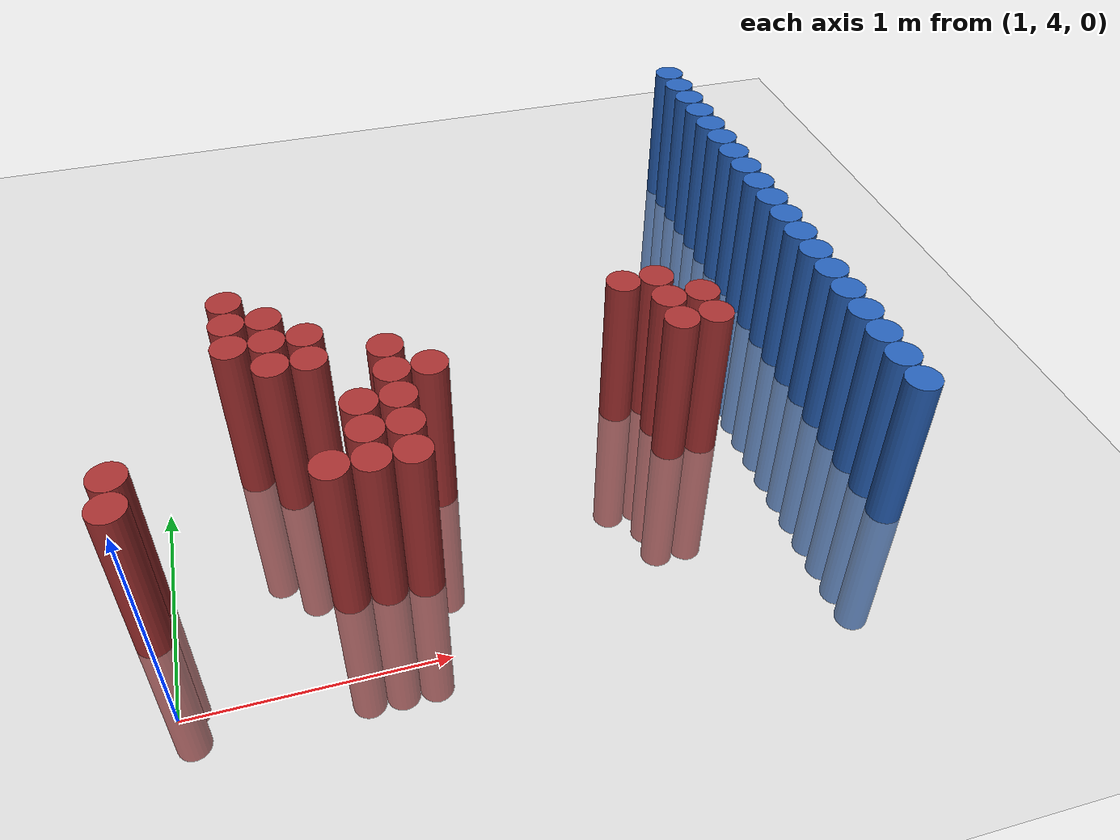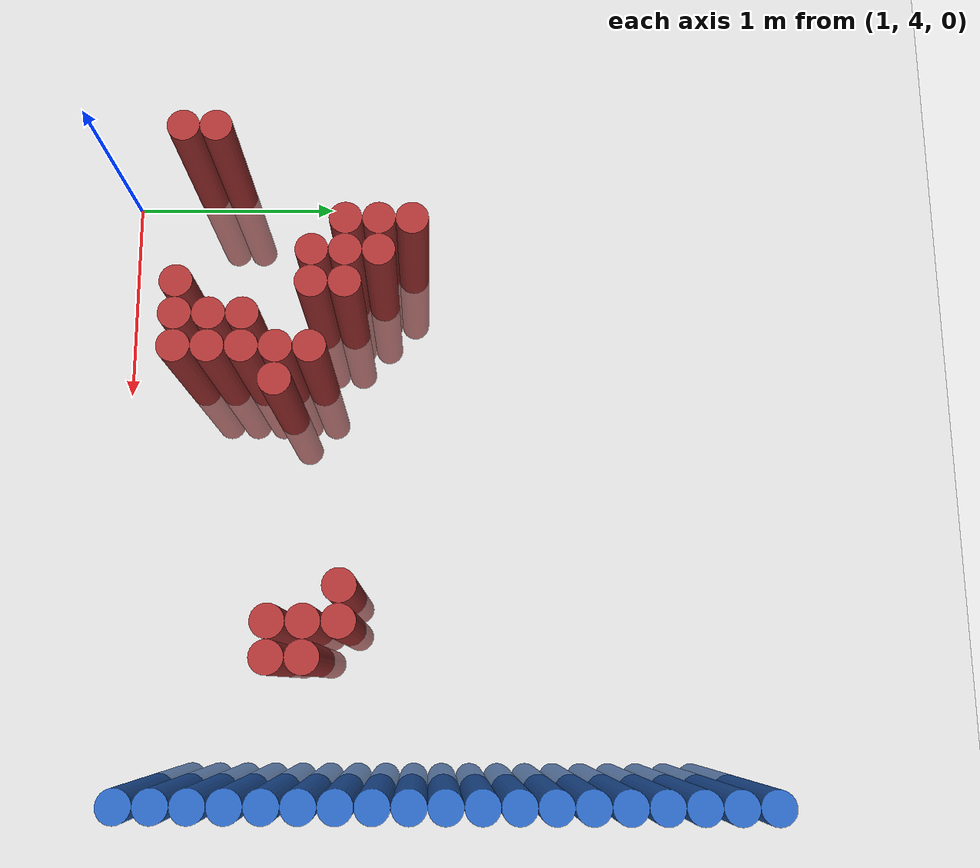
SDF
<sdf version="1.6">
 <world name="default">
  <model name="ground_plane">
   <static>1</static>
   <link name="link">
    <collision name="collision">
     <geometry><plane><normal>0 0 1</normal><size>100 100</size></plane></geometry>
     <surface><friction><ode><mu>100</mu><mu2>50</mu2></ode></friction></surface>
    </collision>
    <visual name="visual">
     <cast_shadows>0</cast_shadows>
     <geometry><plane><normal>0 0 1</normal><size>100 100</size></plane></geometry>
     <material>
      <script><uri>file://media/materials/scripts/gazebo.material</uri><name>Gazebo/Grey</name></script>
     </material>
    </visual>
   </link>
  </model>
  <model name="unit_cylinder_170">
   <static>1</static>
   <pose>3.925000 4.225000 0.000000 0.000000 0.000000 0.000000</pose>
   <link name="link">
    <inertial>
     <mass>1</mass>
     <inertia><ixx>0.145833</ixx><ixy>0</ixy><ixz>0</ixz><iyy>0.145833</iyy><iyz>0</iyz><izz>0.125</izz></inertia>
    </inertial>
    <collision name="collision">
     <geometry><cylinder><radius>0.075000</radius><length>1.5</length></cylinder></geometry>
    </collision>
    <visual name="visual">
     <geometry><cylinder><radius>0.075000</radius><length>1.5</length></cylinder></geometry>
     <material>
      <ambient>0.152000 0.379000 0.720000 1</ambient>
      <diffuse>0.152000 0.379000 0.720000 1</diffuse>
     </material>
     <material>
      <script><name>Gazebo/Grey</name><uri>file://media/materials/scripts/gazebo.material</uri></script>
     </material>
    </visual>
   </link>
  </model>
  <model name="unit_cylinder_172">
   <static>1</static>
   <pose>3.925000 4.375000 0.000000 0.000000 0.000000 0.000000</pose>
   <link name="link">
    <inertial>
     <mass>1</mass>
     <inertia><ixx>0.145833</ixx><ixy>0</ixy><ixz>0</ixz><iyy>0.145833</iyy><iyz>0</iyz><izz>0.125</izz></inertia>
    </inertial>
    <collision name="collision">
     <geometry><cylinder><radius>0.075000</radius><length>1.5</length></cylinder></geometry>
    </collision>
    <visual name="visual">
     <geometry><cylinder><radius>0.075000</radius><length>1.5</length></cylinder></geometry>
     <material>
      <ambient>0.152000 0.379000 0.720000 1</ambient>
      <diffuse>0.152000 0.379000 0.720000 1</diffuse>
     </material>
     <material>
      <script><name>Gazebo/Grey</name><uri>file://media/materials/scripts/gazebo.material</uri></script>
     </material>
    </visual>
   </link>
  </model>
  <model name="unit_cylinder_174">
   <static>1</static>
   <pose>3.925000 4.525000 0.000000 0.000000 0.000000 0.000000</pose>
   <link name="link">
    <inertial>
     <mass>1</mass>
     <inertia><ixx>0.145833</ixx><ixy>0</ixy><ixz>0</ixz><iyy>0.145833</iyy><iyz>0</iyz><izz>0.125</izz></inertia>
    </inertial>
    <collision name="collision">
     <geometry><cylinder><radius>0.075000</radius><length>1.5</length></cylinder></geometry>
    </collision>
    <visual name="visual">
     <geometry><cylinder><radius>0.075000</radius><length>1.5</length></cylinder></geometry>
     <material>
      <ambient>0.152000 0.379000 0.720000 1</ambient>
      <diffuse>0.152000 0.379000 0.720000 1</diffuse>
     </material>
     <material>
      <script><name>Gazebo/Grey</name><uri>file://media/materials/scripts/gazebo.material</uri></script>
     </material>
    </visual>
   </link>
  </model>
  <model name="unit_cylinder_176">
   <static>1</static>
   <pose>3.925000 4.675000 0.000000 0.000000 0.000000 0.000000</pose>
   <link name="link">
    <inertial>
     <mass>1</mass>
     <inertia><ixx>0.145833</ixx><ixy>0</ixy><ixz>0</ixz><iyy>0.145833</iyy><iyz>0</iyz><izz>0.125</izz></inertia>
    </inertial>
    <collision name="collision">
     <geometry><cylinder><radius>0.075000</radius><length>1.5</length></cylinder></geometry>
    </collision>
    <visual name="visual">
     <geometry><cylinder><radius>0.075000</radius><length>1.5</length></cylinder></geometry>
     <material>
      <ambient>0.152000 0.379000 0.720000 1</ambient>
      <diffuse>0.152000 0.379000 0.720000 1</diffuse>
     </material>
     <material>
      <script><name>Gazebo/Grey</name><uri>file://media/materials/scripts/gazebo.material</uri></script>
     </material>
    </visual>
   </link>
  </model>
  <model name="unit_cylinder_178">
   <static>1</static>
   <pose>3.925000 4.825000 0.000000 0.000000 0.000000 0.000000</pose>
   <link name="link">
    <inertial>
     <mass>1</mass>
     <inertia><ixx>0.145833</ixx><ixy>0</ixy><ixz>0</ixz><iyy>0.145833</iyy><iyz>0</iyz><izz>0.125</izz></inertia>
    </inertial>
    <collision name="collision">
     <geometry><cylinder><radius>0.075000</radius><length>1.5</length></cylinder></geometry>
    </collision>
    <visual name="visual">
     <geometry><cylinder><radius>0.075000</radius><length>1.5</length></cylinder></geometry>
     <material>
      <ambient>0.152000 0.379000 0.720000 1</ambient>
      <diffuse>0.152000 0.379000 0.720000 1</diffuse>
     </material>
     <material>
      <script><name>Gazebo/Grey</name><uri>file://media/materials/scripts/gazebo.material</uri></script>
     </material>
    </visual>
   </link>
  </model>
  <model name="unit_cylinder_180">
   <static>1</static>
   <pose>3.925000 4.975000 0.000000 0.000000 0.000000 0.000000</pose>
   <link name="link">
    <inertial>
     <mass>1</mass>
     <inertia><ixx>0.145833</ixx><ixy>0</ixy><ixz>0</ixz><iyy>0.145833</iyy><iyz>0</iyz><izz>0.125</izz></inertia>
    </inertial>
    <collision name="collision">
     <geometry><cylinder><radius>0.075000</radius><length>1.5</length></cylinder></geometry>
    </collision>
    <visual name="visual">
     <geometry><cylinder><radius>0.075000</radius><length>1.5</length></cylinder></geometry>
     <material>
      <ambient>0.152000 0.379000 0.720000 1</ambient>
      <diffuse>0.152000 0.379000 0.720000 1</diffuse>
     </material>
     <material>
      <script><name>Gazebo/Grey</name><uri>file://media/materials/scripts/gazebo.material</uri></script>
     </material>
    </visual>
   </link>
  </model>
  <model name="unit_cylinder_182">
   <static>1</static>
   <pose>3.925000 5.125000 0.000000 0.000000 0.000000 0.000000</pose>
   <link name="link">
    <inertial>
     <mass>1</mass>
     <inertia><ixx>0.145833</ixx><ixy>0</ixy><ixz>0</ixz><iyy>0.145833</iyy><iyz>0</iyz><izz>0.125</izz></inertia>
    </inertial>
    <collision name="collision">
     <geometry><cylinder><radius>0.075000</radius><length>1.5</length></cylinder></geometry>
    </collision>
    <visual name="visual">
     <geometry><cylinder><radius>0.075000</radius><length>1.5</length></cylinder></geometry>
     <material>
      <ambient>0.152000 0.379000 0.720000 1</ambient>
      <diffuse>0.152000 0.379000 0.720000 1</diffuse>
     </material>
     <material>
      <script><name>Gazebo/Grey</name><uri>file://media/materials/scripts/gazebo.material</uri></script>
     </material>
    </visual>
   </link>
  </model>
  <model name="unit_cylinder_184">
   <static>1</static>
   <pose>3.925000 5.275000 0.000000 0.000000 0.000000 0.000000</pose>
   <link name="link">
    <inertial>
     <mass>1</mass>
     <inertia><ixx>0.145833</ixx><ixy>0</ixy><ixz>0</ixz><iyy>0.145833</iyy><iyz>0</iyz><izz>0.125</izz></inertia>
    </inertial>
    <collision name="collision">
     <geometry><cylinder><radius>0.075000</radius><length>1.5</length></cylinder></geometry>
    </collision>
    <visual name="visual">
     <geometry><cylinder><radius>0.075000</radius><length>1.5</length></cylinder></geometry>
     <material>
      <ambient>0.152000 0.379000 0.720000 1</ambient>
      <diffuse>0.152000 0.379000 0.720000 1</diffuse>
     </material>
     <material>
      <script><name>Gazebo/Grey</name><uri>file://media/materials/scripts/gazebo.material</uri></script>
     </material>
    </visual>
   </link>
  </model>
  <model name="unit_cylinder_186">
   <static>1</static>
   <pose>3.925000 5.425000 0.000000 0.000000 0.000000 0.000000</pose>
   <link name="link">
    <inertial>
     <mass>1</mass>
     <inertia><ixx>0.145833</ixx><ixy>0</ixy><ixz>0</ixz><iyy>0.145833</iyy><iyz>0</iyz><izz>0.125</izz></inertia>
    </inertial>
    <collision name="collision">
     <geometry><cylinder><radius>0.075000</radius><length>1.5</length></cylinder></geometry>
    </collision>
    <visual name="visual">
     <geometry><cylinder><radius>0.075000</radius><length>1.5</length></cylinder></geometry>
     <material>
      <ambient>0.152000 0.379000 0.720000 1</ambient>
      <diffuse>0.152000 0.379000 0.720000 1</diffuse>
     </material>
     <material>
      <script><name>Gazebo/Grey</name><uri>file://media/materials/scripts/gazebo.material</uri></script>
     </material>
    </visual>
   </link>
  </model>
  <model name="unit_cylinder_188">
   <static>1</static>
   <pose>3.925000 5.575000 0.000000 0.000000 0.000000 0.000000</pose>
   <link name="link">
    <inertial>
     <mass>1</mass>
     <inertia><ixx>0.145833</ixx><ixy>0</ixy><ixz>0</ixz><iyy>0.145833</iyy><iyz>0</iyz><izz>0.125</izz></inertia>
    </inertial>
    <collision name="collision">
     <geometry><cylinder><radius>0.075000</radius><length>1.5</length></cylinder></geometry>
    </collision>
    <visual name="visual">
     <geometry><cylinder><radius>0.075000</radius><length>1.5</length></cylinder></geometry>
     <material>
      <ambient>0.152000 0.379000 0.720000 1</ambient>
      <diffuse>0.152000 0.379000 0.720000 1</diffuse>
     </material>
     <material>
      <script><name>Gazebo/Grey</name><uri>file://media/materials/scripts/gazebo.material</uri></script>
     </material>
    </visual>
   </link>
  </model>
  <model name="unit_cylinder_190">
   <static>1</static>
   <pose>3.925000 5.725000 0.000000 0.000000 0.000000 0.000000</pose>
   <link name="link">
    <inertial>
     <mass>1</mass>
     <inertia><ixx>0.145833</ixx><ixy>0</ixy><ixz>0</ixz><iyy>0.145833</iyy><iyz>0</iyz><izz>0.125</izz></inertia>
    </inertial>
    <collision name="collision">
     <geometry><cylinder><radius>0.075000</radius><length>1.5</length></cylinder></geometry>
    </collision>
    <visual name="visual">
     <geometry><cylinder><radius>0.075000</radius><length>1.5</length></cylinder></geometry>
     <material>
      <ambient>0.152000 0.379000 0.720000 1</ambient>
      <diffuse>0.152000 0.379000 0.720000 1</diffuse>
     </material>
     <material>
      <script><name>Gazebo/Grey</name><uri>file://media/materials/scripts/gazebo.material</uri></script>
     </material>
    </visual>
   </link>
  </model>
  <model name="unit_cylinder_192">
   <static>1</static>
   <pose>3.925000 5.875000 0.000000 0.000000 0.000000 0.000000</pose>
   <link name="link">
    <inertial>
     <mass>1</mass>
     <inertia><ixx>0.145833</ixx><ixy>0</ixy><ixz>0</ixz><iyy>0.145833</iyy><iyz>0</iyz><izz>0.125</izz></inertia>
    </inertial>
    <collision name="collision">
     <geometry><cylinder><radius>0.075000</radius><length>1.5</length></cylinder></geometry>
    </collision>
    <visual name="visual">
     <geometry><cylinder><radius>0.075000</radius><length>1.5</length></cylinder></geometry>
     <material>
      <ambient>0.152000 0.379000 0.720000 1</ambient>
      <diffuse>0.152000 0.379000 0.720000 1</diffuse>
     </material>
     <material>
      <script><name>Gazebo/Grey</name><uri>file://media/materials/scripts/gazebo.material</uri></script>
     </material>
    </visual>
   </link>
  </model>
  <model name="unit_cylinder_194">
   <static>1</static>
   <pose>3.925000 6.025000 0.000000 0.000000 0.000000 0.000000</pose>
   <link name="link">
    <inertial>
     <mass>1</mass>
     <inertia><ixx>0.145833</ixx><ixy>0</ixy><ixz>0</ixz><iyy>0.145833</iyy><iyz>0</iyz><izz>0.125</izz></inertia>
    </inertial>
    <collision name="collision">
     <geometry><cylinder><radius>0.075000</radius><length>1.5</length></cylinder></geometry>
    </collision>
    <visual name="visual">
     <geometry><cylinder><radius>0.075000</radius><length>1.5</length></cylinder></geometry>
     <material>
      <ambient>0.152000 0.379000 0.720000 1</ambient>
      <diffuse>0.152000 0.379000 0.720000 1</diffuse>
     </material>
     <material>
      <script><name>Gazebo/Grey</name><uri>file://media/materials/scripts/gazebo.material</uri></script>
     </material>
    </visual>
   </link>
  </model>
  <model name="unit_cylinder_196">
   <static>1</static>
   <pose>3.925000 6.175000 0.000000 0.000000 0.000000 0.000000</pose>
   <link name="link">
    <inertial>
     <mass>1</mass>
     <inertia><ixx>0.145833</ixx><ixy>0</ixy><ixz>0</ixz><iyy>0.145833</iyy><iyz>0</iyz><izz>0.125</izz></inertia>
    </inertial>
    <collision name="collision">
     <geometry><cylinder><radius>0.075000</radius><length>1.5</length></cylinder></geometry>
    </collision>
    <visual name="visual">
     <geometry><cylinder><radius>0.075000</radius><length>1.5</length></cylinder></geometry>
     <material>
      <ambient>0.152000 0.379000 0.720000 1</ambient>
      <diffuse>0.152000 0.379000 0.720000 1</diffuse>
     </material>
     <material>
      <script><name>Gazebo/Grey</name><uri>file://media/materials/scripts/gazebo.material</uri></script>
     </material>
    </visual>
   </link>
  </model>
  <model name="unit_cylinder_198">
   <static>1</static>
   <pose>3.925000 6.325000 0.000000 0.000000 0.000000 0.000000</pose>
   <link name="link">
    <inertial>
     <mass>1</mass>
     <inertia><ixx>0.145833</ixx><ixy>0</ixy><ixz>0</ixz><iyy>0.145833</iyy><iyz>0</iyz><izz>0.125</izz></inertia>
    </inertial>
    <collision name="collision">
     <geometry><cylinder><radius>0.075000</radius><length>1.5</length></cylinder></geometry>
    </collision>
    <visual name="visual">
     <geometry><cylinder><radius>0.075000</radius><length>1.5</length></cylinder></geometry>
     <material>
      <ambient>0.152000 0.379000 0.720000 1</ambient>
      <diffuse>0.152000 0.379000 0.720000 1</diffuse>
     </material>
     <material>
      <script><name>Gazebo/Grey</name><uri>file://media/materials/scripts/gazebo.material</uri></script>
     </material>
    </visual>
   </link>
  </model>
  <model name="unit_cylinder_200">
   <static>1</static>
   <pose>3.925000 6.475000 0.000000 0.000000 0.000000 0.000000</pose>
   <link name="link">
    <inertial>
     <mass>1</mass>
     <inertia><ixx>0.145833</ixx><ixy>0</ixy><ixz>0</ixz><iyy>0.145833</iyy><iyz>0</iyz><izz>0.125</izz></inertia>
    </inertial>
    <collision name="collision">
     <geometry><cylinder><radius>0.075000</radius><length>1.5</length></cylinder></geometry>
    </collision>
    <visual name="visual">
     <geometry><cylinder><radius>0.075000</radius><length>1.5</length></cylinder></geometry>
     <material>
      <ambient>0.152000 0.379000 0.720000 1</ambient>
      <diffuse>0.152000 0.379000 0.720000 1</diffuse>
     </material>
     <material>
      <script><name>Gazebo/Grey</name><uri>file://media/materials/scripts/gazebo.material</uri></script>
     </material>
    </visual>
   </link>
  </model>
  <model name="unit_cylinder_202">
   <static>1</static>
   <pose>3.925000 6.625000 0.000000 0.000000 0.000000 0.000000</pose>
   <link name="link">
    <inertial>
     <mass>1</mass>
     <inertia><ixx>0.145833</ixx><ixy>0</ixy><ixz>0</ixz><iyy>0.145833</iyy><iyz>0</iyz><izz>0.125</izz></inertia>
    </inertial>
    <collision name="collision">
     <geometry><cylinder><radius>0.075000</radius><length>1.5</length></cylinder></geometry>
    </collision>
    <visual name="visual">
     <geometry><cylinder><radius>0.075000</radius><length>1.5</length></cylinder></geometry>
     <material>
      <ambient>0.152000 0.379000 0.720000 1</ambient>
      <diffuse>0.152000 0.379000 0.720000 1</diffuse>
     </material>
     <material>
      <script><name>Gazebo/Grey</name><uri>file://media/materials/scripts/gazebo.material</uri></script>
     </material>
    </visual>
   </link>
  </model>
  <model name="unit_cylinder_204">
   <static>1</static>
   <pose>3.925000 6.775000 0.000000 0.000000 0.000000 0.000000</pose>
   <link name="link">
    <inertial>
     <mass>1</mass>
     <inertia><ixx>0.145833</ixx><ixy>0</ixy><ixz>0</ixz><iyy>0.145833</iyy><iyz>0</iyz><izz>0.125</izz></inertia>
    </inertial>
    <collision name="collision">
     <geometry><cylinder><radius>0.075000</radius><length>1.5</length></cylinder></geometry>
    </collision>
    <visual name="visual">
     <geometry><cylinder><radius>0.075000</radius><length>1.5</length></cylinder></geometry>
     <material>
      <ambient>0.152000 0.379000 0.720000 1</ambient>
      <diffuse>0.152000 0.379000 0.720000 1</diffuse>
     </material>
     <material>
      <script><name>Gazebo/Grey</name><uri>file://media/materials/scripts/gazebo.material</uri></script>
     </material>
    </visual>
   </link>
  </model>
  <model name="unit_cylinder_206">
   <static>1</static>
   <pose>3.925000 6.925000 0.000000 0.000000 0.000000 0.000000</pose>
   <link name="link">
    <inertial>
     <mass>1</mass>
     <inertia><ixx>0.145833</ixx><ixy>0</ixy><ixz>0</ixz><iyy>0.145833</iyy><iyz>0</iyz><izz>0.125</izz></inertia>
    </inertial>
    <collision name="collision">
     <geometry><cylinder><radius>0.075000</radius><length>1.5</length></cylinder></geometry>
    </collision>
    <visual name="visual">
     <geometry><cylinder><radius>0.075000</radius><length>1.5</length></cylinder></geometry>
     <material>
      <ambient>0.152000 0.379000 0.720000 1</ambient>
      <diffuse>0.152000 0.379000 0.720000 1</diffuse>
     </material>
     <material>
      <script><name>Gazebo/Grey</name><uri>file://media/materials/scripts/gazebo.material</uri></script>
     </material>
    </visual>
   </link>
  </model>
  <model name="unit_cylinder_340">
   <static>1</static>
   <pose>0.925000 4.375000 0.000000 0.000000 0.000000 0.000000</pose>
   <link name="link">
    <inertial>
     <mass>1</mass>
     <inertia><ixx>0.145833</ixx><ixy>0</ixy><ixz>0</ixz><iyy>0.145833</iyy><iyz>0</iyz><izz>0.125</izz></inertia>
    </inertial>
    <collision name="collision">
     <geometry><cylinder><radius>0.075000</radius><length>1.5</length></cylinder></geometry>
    </collision>
    <visual name="visual">
     <geometry><cylinder><radius>0.075000</radius><length>1.5</length></cylinder></geometry>
     <material>
      <ambient>0.648000 0.192000 0.192000 1</ambient>
      <diffuse>0.648000 0.192000 0.192000 1</diffuse>
     </material>
     <material>
      <script><name>Gazebo/Grey</name><uri>file://media/materials/scripts/gazebo.material</uri></script>
     </material>
    </visual>
   </link>
  </model>
  <model name="unit_cylinder_341">
   <static>1</static>
   <pose>0.925000 4.525000 0.000000 0.000000 0.000000 0.000000</pose>
   <link name="link">
    <inertial>
     <mass>1</mass>
     <inertia><ixx>0.145833</ixx><ixy>0</ixy><ixz>0</ixz><iyy>0.145833</iyy><iyz>0</iyz><izz>0.125</izz></inertia>
    </inertial>
    <collision name="collision">
     <geometry><cylinder><radius>0.075000</radius><length>1.5</length></cylinder></geometry>
    </collision>
    <visual name="visual">
     <geometry><cylinder><radius>0.075000</radius><length>1.5</length></cylinder></geometry>
     <material>
      <ambient>0.648000 0.192000 0.192000 1</ambient>
      <diffuse>0.648000 0.192000 0.192000 1</diffuse>
     </material>
     <material>
      <script><name>Gazebo/Grey</name><uri>file://media/materials/scripts/gazebo.material</uri></script>
     </material>
    </visual>
   </link>
  </model>
  <model name="unit_cylinder_352">
   <static>1</static>
   <pose>1.375000 5.125000 0.000000 0.000000 0.000000 0.000000</pose>
   <link name="link">
    <inertial>
     <mass>1</mass>
     <inertia><ixx>0.145833</ixx><ixy>0</ixy><ixz>0</ixz><iyy>0.145833</iyy><iyz>0</iyz><izz>0.125</izz></inertia>
    </inertial>
    <collision name="collision">
     <geometry><cylinder><radius>0.075000</radius><length>1.5</length></cylinder></geometry>
    </collision>
    <visual name="visual">
     <geometry><cylinder><radius>0.075000</radius><length>1.5</length></cylinder></geometry>
     <material>
      <ambient>0.648000 0.192000 0.192000 1</ambient>
      <diffuse>0.648000 0.192000 0.192000 1</diffuse>
     </material>
     <material>
      <script><name>Gazebo/Grey</name><uri>file://media/materials/scripts/gazebo.material</uri></script>
     </material>
    </visual>
   </link>
  </model>
  <model name="unit_cylinder_353">
   <static>1</static>
   <pose>1.375000 5.275000 0.000000 0.000000 0.000000 0.000000</pose>
   <link name="link">
    <inertial>
     <mass>1</mass>
     <inertia><ixx>0.145833</ixx><ixy>0</ixy><ixz>0</ixz><iyy>0.145833</iyy><iyz>0</iyz><izz>0.125</izz></inertia>
    </inertial>
    <collision name="collision">
     <geometry><cylinder><radius>0.075000</radius><length>1.5</length></cylinder></geometry>
    </collision>
    <visual name="visual">
     <geometry><cylinder><radius>0.075000</radius><length>1.5</length></cylinder></geometry>
     <material>
      <ambient>0.648000 0.192000 0.192000 1</ambient>
      <diffuse>0.648000 0.192000 0.192000 1</diffuse>
     </material>
     <material>
      <script><name>Gazebo/Grey</name><uri>file://media/materials/scripts/gazebo.material</uri></script>
     </material>
    </visual>
   </link>
  </model>
  <model name="unit_cylinder_354">
   <static>1</static>
   <pose>1.375000 5.425000 0.000000 0.000000 0.000000 0.000000</pose>
   <link name="link">
    <inertial>
     <mass>1</mass>
     <inertia><ixx>0.145833</ixx><ixy>0</ixy><ixz>0</ixz><iyy>0.145833</iyy><iyz>0</iyz><izz>0.125</izz></inertia>
    </inertial>
    <collision name="collision">
     <geometry><cylinder><radius>0.075000</radius><length>1.5</length></cylinder></geometry>
    </collision>
    <visual name="visual">
     <geometry><cylinder><radius>0.075000</radius><length>1.5</length></cylinder></geometry>
     <material>
      <ambient>0.648000 0.192000 0.192000 1</ambient>
      <diffuse>0.648000 0.192000 0.192000 1</diffuse>
     </material>
     <material>
      <script><name>Gazebo/Grey</name><uri>file://media/materials/scripts/gazebo.material</uri></script>
     </material>
    </visual>
   </link>
  </model>
  <model name="unit_cylinder_357">
   <static>1</static>
   <pose>1.525000 4.975000 0.000000 0.000000 0.000000 0.000000</pose>
   <link name="link">
    <inertial>
     <mass>1</mass>
     <inertia><ixx>0.145833</ixx><ixy>0</ixy><ixz>0</ixz><iyy>0.145833</iyy><iyz>0</iyz><izz>0.125</izz></inertia>
    </inertial>
    <collision name="collision">
     <geometry><cylinder><radius>0.075000</radius><length>1.5</length></cylinder></geometry>
    </collision>
    <visual name="visual">
     <geometry><cylinder><radius>0.075000</radius><length>1.5</length></cylinder></geometry>
     <material>
      <ambient>0.648000 0.192000 0.192000 1</ambient>
      <diffuse>0.648000 0.192000 0.192000 1</diffuse>
     </material>
     <material>
      <script><name>Gazebo/Grey</name><uri>file://media/materials/scripts/gazebo.material</uri></script>
     </material>
    </visual>
   </link>
  </model>
  <model name="unit_cylinder_358">
   <static>1</static>
   <pose>1.525000 5.125000 0.000000 0.000000 0.000000 0.000000</pose>
   <link name="link">
    <inertial>
     <mass>1</mass>
     <inertia><ixx>0.145833</ixx><ixy>0</ixy><ixz>0</ixz><iyy>0.145833</iyy><iyz>0</iyz><izz>0.125</izz></inertia>
    </inertial>
    <collision name="collision">
     <geometry><cylinder><radius>0.075000</radius><length>1.5</length></cylinder></geometry>
    </collision>
    <visual name="visual">
     <geometry><cylinder><radius>0.075000</radius><length>1.5</length></cylinder></geometry>
     <material>
      <ambient>0.648000 0.192000 0.192000 1</ambient>
      <diffuse>0.648000 0.192000 0.192000 1</diffuse>
     </material>
     <material>
      <script><name>Gazebo/Grey</name><uri>file://media/materials/scripts/gazebo.material</uri></script>
     </material>
    </visual>
   </link>
  </model>
  <model name="unit_cylinder_359">
   <static>1</static>
   <pose>1.525000 5.275000 0.000000 0.000000 0.000000 0.000000</pose>
   <link name="link">
    <inertial>
     <mass>1</mass>
     <inertia><ixx>0.145833</ixx><ixy>0</ixy><ixz>0</ixz><iyy>0.145833</iyy><iyz>0</iyz><izz>0.125</izz></inertia>
    </inertial>
    <collision name="collision">
     <geometry><cylinder><radius>0.075000</radius><length>1.5</length></cylinder></geometry>
    </collision>
    <visual name="visual">
     <geometry><cylinder><radius>0.075000</radius><length>1.5</length></cylinder></geometry>
     <material>
      <ambient>0.648000 0.192000 0.192000 1</ambient>
      <diffuse>0.648000 0.192000 0.192000 1</diffuse>
     </material>
     <material>
      <script><name>Gazebo/Grey</name><uri>file://media/materials/scripts/gazebo.material</uri></script>
     </material>
    </visual>
   </link>
  </model>
  <model name="unit_cylinder_360">
   <static>1</static>
   <pose>1.675000 4.375000 0.000000 0.000000 0.000000 0.000000</pose>
   <link name="link">
    <inertial>
     <mass>1</mass>
     <inertia><ixx>0.145833</ixx><ixy>0</ixy><ixz>0</ixz><iyy>0.145833</iyy><iyz>0</iyz><izz>0.125</izz></inertia>
    </inertial>
    <collision name="collision">
     <geometry><cylinder><radius>0.075000</radius><length>1.5</length></cylinder></geometry>
    </collision>
    <visual name="visual">
     <geometry><cylinder><radius>0.075000</radius><length>1.5</length></cylinder></geometry>
     <material>
      <ambient>0.648000 0.192000 0.192000 1</ambient>
      <diffuse>0.648000 0.192000 0.192000 1</diffuse>
     </material>
     <material>
      <script><name>Gazebo/Grey</name><uri>file://media/materials/scripts/gazebo.material</uri></script>
     </material>
    </visual>
   </link>
  </model>
  <model name="unit_cylinder_361">
   <static>1</static>
   <pose>1.675000 4.975000 0.000000 0.000000 0.000000 0.000000</pose>
   <link name="link">
    <inertial>
     <mass>1</mass>
     <inertia><ixx>0.145833</ixx><ixy>0</ixy><ixz>0</ixz><iyy>0.145833</iyy><iyz>0</iyz><izz>0.125</izz></inertia>
    </inertial>
    <collision name="collision">
     <geometry><cylinder><radius>0.075000</radius><length>1.5</length></cylinder></geometry>
    </collision>
    <visual name="visual">
     <geometry><cylinder><radius>0.075000</radius><length>1.5</length></cylinder></geometry>
     <material>
      <ambient>0.648000 0.192000 0.192000 1</ambient>
      <diffuse>0.648000 0.192000 0.192000 1</diffuse>
     </material>
     <material>
      <script><name>Gazebo/Grey</name><uri>file://media/materials/scripts/gazebo.material</uri></script>
     </material>
    </visual>
   </link>
  </model>
  <model name="unit_cylinder_362">
   <static>1</static>
   <pose>1.675000 5.125000 0.000000 0.000000 0.000000 0.000000</pose>
   <link name="link">
    <inertial>
     <mass>1</mass>
     <inertia><ixx>0.145833</ixx><ixy>0</ixy><ixz>0</ixz><iyy>0.145833</iyy><iyz>0</iyz><izz>0.125</izz></inertia>
    </inertial>
    <collision name="collision">
     <geometry><cylinder><radius>0.075000</radius><length>1.5</length></cylinder></geometry>
    </collision>
    <visual name="visual">
     <geometry><cylinder><radius>0.075000</radius><length>1.5</length></cylinder></geometry>
     <material>
      <ambient>0.648000 0.192000 0.192000 1</ambient>
      <diffuse>0.648000 0.192000 0.192000 1</diffuse>
     </material>
     <material>
      <script><name>Gazebo/Grey</name><uri>file://media/materials/scripts/gazebo.material</uri></script>
     </material>
    </visual>
   </link>
  </model>
  <model name="unit_cylinder_364">
   <static>1</static>
   <pose>1.825000 4.375000 0.000000 0.000000 0.000000 0.000000</pose>
   <link name="link">
    <inertial>
     <mass>1</mass>
     <inertia><ixx>0.145833</ixx><ixy>0</ixy><ixz>0</ixz><iyy>0.145833</iyy><iyz>0</iyz><izz>0.125</izz></inertia>
    </inertial>
    <collision name="collision">
     <geometry><cylinder><radius>0.075000</radius><length>1.5</length></cylinder></geometry>
    </collision>
    <visual name="visual">
     <geometry><cylinder><radius>0.075000</radius><length>1.5</length></cylinder></geometry>
     <material>
      <ambient>0.648000 0.192000 0.192000 1</ambient>
      <diffuse>0.648000 0.192000 0.192000 1</diffuse>
     </material>
     <material>
      <script><name>Gazebo/Grey</name><uri>file://media/materials/scripts/gazebo.material</uri></script>
     </material>
    </visual>
   </link>
  </model>
  <model name="unit_cylinder_365">
   <static>1</static>
   <pose>1.825000 4.525000 0.000000 0.000000 0.000000 0.000000</pose>
   <link name="link">
    <inertial>
     <mass>1</mass>
     <inertia><ixx>0.145833</ixx><ixy>0</ixy><ixz>0</ixz><iyy>0.145833</iyy><iyz>0</iyz><izz>0.125</izz></inertia>
    </inertial>
    <collision name="collision">
     <geometry><cylinder><radius>0.075000</radius><length>1.5</length></cylinder></geometry>
    </collision>
    <visual name="visual">
     <geometry><cylinder><radius>0.075000</radius><length>1.5</length></cylinder></geometry>
     <material>
      <ambient>0.648000 0.192000 0.192000 1</ambient>
      <diffuse>0.648000 0.192000 0.192000 1</diffuse>
     </material>
     <material>
      <script><name>Gazebo/Grey</name><uri>file://media/materials/scripts/gazebo.material</uri></script>
     </material>
    </visual>
   </link>
  </model>
  <model name="unit_cylinder_366">
   <static>1</static>
   <pose>1.825000 4.675000 0.000000 0.000000 0.000000 0.000000</pose>
   <link name="link">
    <inertial>
     <mass>1</mass>
     <inertia><ixx>0.145833</ixx><ixy>0</ixy><ixz>0</ixz><iyy>0.145833</iyy><iyz>0</iyz><izz>0.125</izz></inertia>
    </inertial>
    <collision name="collision">
     <geometry><cylinder><radius>0.075000</radius><length>1.5</length></cylinder></geometry>
    </collision>
    <visual name="visual">
     <geometry><cylinder><radius>0.075000</radius><length>1.5</length></cylinder></geometry>
     <material>
      <ambient>0.648000 0.192000 0.192000 1</ambient>
      <diffuse>0.648000 0.192000 0.192000 1</diffuse>
     </material>
     <material>
      <script><name>Gazebo/Grey</name><uri>file://media/materials/scripts/gazebo.material</uri></script>
     </material>
    </visual>
   </link>
  </model>
  <model name="unit_cylinder_367">
   <static>1</static>
   <pose>1.975000 4.375000 0.000000 0.000000 0.000000 0.000000</pose>
   <link name="link">
    <inertial>
     <mass>1</mass>
     <inertia><ixx>0.145833</ixx><ixy>0</ixy><ixz>0</ixz><iyy>0.145833</iyy><iyz>0</iyz><izz>0.125</izz></inertia>
    </inertial>
    <collision name="collision">
     <geometry><cylinder><radius>0.075000</radius><length>1.5</length></cylinder></geometry>
    </collision>
    <visual name="visual">
     <geometry><cylinder><radius>0.075000</radius><length>1.5</length></cylinder></geometry>
     <material>
      <ambient>0.648000 0.192000 0.192000 1</ambient>
      <diffuse>0.648000 0.192000 0.192000 1</diffuse>
     </material>
     <material>
      <script><name>Gazebo/Grey</name><uri>file://media/materials/scripts/gazebo.material</uri></script>
     </material>
    </visual>
   </link>
  </model>
  <model name="unit_cylinder_368">
   <static>1</static>
   <pose>1.975000 4.525000 0.000000 0.000000 0.000000 0.000000</pose>
   <link name="link">
    <inertial>
     <mass>1</mass>
     <inertia><ixx>0.145833</ixx><ixy>0</ixy><ixz>0</ixz><iyy>0.145833</iyy><iyz>0</iyz><izz>0.125</izz></inertia>
    </inertial>
    <collision name="collision">
     <geometry><cylinder><radius>0.075000</radius><length>1.5</length></cylinder></geometry>
    </collision>
    <visual name="visual">
     <geometry><cylinder><radius>0.075000</radius><length>1.5</length></cylinder></geometry>
     <material>
      <ambient>0.648000 0.192000 0.192000 1</ambient>
      <diffuse>0.648000 0.192000 0.192000 1</diffuse>
     </material>
     <material>
      <script><name>Gazebo/Grey</name><uri>file://media/materials/scripts/gazebo.material</uri></script>
     </material>
    </visual>
   </link>
  </model>
  <model name="unit_cylinder_369">
   <static>1</static>
   <pose>1.975000 4.675000 0.000000 0.000000 0.000000 0.000000</pose>
   <link name="link">
    <inertial>
     <mass>1</mass>
     <inertia><ixx>0.145833</ixx><ixy>0</ixy><ixz>0</ixz><iyy>0.145833</iyy><iyz>0</iyz><izz>0.125</izz></inertia>
    </inertial>
    <collision name="collision">
     <geometry><cylinder><radius>0.075000</radius><length>1.5</length></cylinder></geometry>
    </collision>
    <visual name="visual">
     <geometry><cylinder><radius>0.075000</radius><length>1.5</length></cylinder></geometry>
     <material>
      <ambient>0.648000 0.192000 0.192000 1</ambient>
      <diffuse>0.648000 0.192000 0.192000 1</diffuse>
     </material>
     <material>
      <script><name>Gazebo/Grey</name><uri>file://media/materials/scripts/gazebo.material</uri></script>
     </material>
    </visual>
   </link>
  </model>
  <model name="unit_cylinder_370">
   <static>1</static>
   <pose>1.975000 4.825000 0.000000 0.000000 0.000000 0.000000</pose>
   <link name="link">
    <inertial>
     <mass>1</mass>
     <inertia><ixx>0.145833</ixx><ixy>0</ixy><ixz>0</ixz><iyy>0.145833</iyy><iyz>0</iyz><izz>0.125</izz></inertia>
    </inertial>
    <collision name="collision">
     <geometry><cylinder><radius>0.075000</radius><length>1.5</length></cylinder></geometry>
    </collision>
    <visual name="visual">
     <geometry><cylinder><radius>0.075000</radius><length>1.5</length></cylinder></geometry>
     <material>
      <ambient>0.648000 0.192000 0.192000 1</ambient>
      <diffuse>0.648000 0.192000 0.192000 1</diffuse>
     </material>
     <material>
      <script><name>Gazebo/Grey</name><uri>file://media/materials/scripts/gazebo.material</uri></script>
     </material>
    </visual>
   </link>
  </model>
  <model name="unit_cylinder_371">
   <static>1</static>
   <pose>1.975000 4.975000 0.000000 0.000000 0.000000 0.000000</pose>
   <link name="link">
    <inertial>
     <mass>1</mass>
     <inertia><ixx>0.145833</ixx><ixy>0</ixy><ixz>0</ixz><iyy>0.145833</iyy><iyz>0</iyz><izz>0.125</izz></inertia>
    </inertial>
    <collision name="collision">
     <geometry><cylinder><radius>0.075000</radius><length>1.5</length></cylinder></geometry>
    </collision>
    <visual name="visual">
     <geometry><cylinder><radius>0.075000</radius><length>1.5</length></cylinder></geometry>
     <material>
      <ambient>0.648000 0.192000 0.192000 1</ambient>
      <diffuse>0.648000 0.192000 0.192000 1</diffuse>
     </material>
     <material>
      <script><name>Gazebo/Grey</name><uri>file://media/materials/scripts/gazebo.material</uri></script>
     </material>
    </visual>
   </link>
  </model>
  <model name="unit_cylinder_373">
   <static>1</static>
   <pose>2.125000 4.825000 0.000000 0.000000 0.000000 0.000000</pose>
   <link name="link">
    <inertial>
     <mass>1</mass>
     <inertia><ixx>0.145833</ixx><ixy>0</ixy><ixz>0</ixz><iyy>0.145833</iyy><iyz>0</iyz><izz>0.125</izz></inertia>
    </inertial>
    <collision name="collision">
     <geometry><cylinder><radius>0.075000</radius><length>1.5</length></cylinder></geometry>
    </collision>
    <visual name="visual">
     <geometry><cylinder><radius>0.075000</radius><length>1.5</length></cylinder></geometry>
     <material>
      <ambient>0.648000 0.192000 0.192000 1</ambient>
      <diffuse>0.648000 0.192000 0.192000 1</diffuse>
     </material>
     <material>
      <script><name>Gazebo/Grey</name><uri>file://media/materials/scripts/gazebo.material</uri></script>
     </material>
    </visual>
   </link>
  </model>
  <model name="unit_cylinder_400">
   <static>1</static>
   <pose>3.025000 5.125000 0.000000 0.000000 0.000000 0.000000</pose>
   <link name="link">
    <inertial>
     <mass>1</mass>
     <inertia><ixx>0.145833</ixx><ixy>0</ixy><ixz>0</ixz><iyy>0.145833</iyy><iyz>0</iyz><izz>0.125</izz></inertia>
    </inertial>
    <collision name="collision">
     <geometry><cylinder><radius>0.075000</radius><length>1.5</length></cylinder></geometry>
    </collision>
    <visual name="visual">
     <geometry><cylinder><radius>0.075000</radius><length>1.5</length></cylinder></geometry>
     <material>
      <ambient>0.648000 0.192000 0.192000 1</ambient>
      <diffuse>0.648000 0.192000 0.192000 1</diffuse>
     </material>
     <material>
      <script><name>Gazebo/Grey</name><uri>file://media/materials/scripts/gazebo.material</uri></script>
     </material>
    </visual>
   </link>
  </model>
  <model name="unit_cylinder_406">
   <static>1</static>
   <pose>3.175000 4.825000 0.000000 0.000000 0.000000 0.000000</pose>
   <link name="link">
    <inertial>
     <mass>1</mass>
     <inertia><ixx>0.145833</ixx><ixy>0</ixy><ixz>0</ixz><iyy>0.145833</iyy><iyz>0</iyz><izz>0.125</izz></inertia>
    </inertial>
    <collision name="collision">
     <geometry><cylinder><radius>0.075000</radius><length>1.5</length></cylinder></geometry>
    </collision>
    <visual name="visual">
     <geometry><cylinder><radius>0.075000</radius><length>1.5</length></cylinder></geometry>
     <material>
      <ambient>0.648000 0.192000 0.192000 1</ambient>
      <diffuse>0.648000 0.192000 0.192000 1</diffuse>
     </material>
     <material>
      <script><name>Gazebo/Grey</name><uri>file://media/materials/scripts/gazebo.material</uri></script>
     </material>
    </visual>
   </link>
  </model>
  <model name="unit_cylinder_407">
   <static>1</static>
   <pose>3.175000 4.975000 0.000000 0.000000 0.000000 0.000000</pose>
   <link name="link">
    <inertial>
     <mass>1</mass>
     <inertia><ixx>0.145833</ixx><ixy>0</ixy><ixz>0</ixz><iyy>0.145833</iyy><iyz>0</iyz><izz>0.125</izz></inertia>
    </inertial>
    <collision name="collision">
     <geometry><cylinder><radius>0.075000</radius><length>1.5</length></cylinder></geometry>
    </collision>
    <visual name="visual">
     <geometry><cylinder><radius>0.075000</radius><length>1.5</length></cylinder></geometry>
     <material>
      <ambient>0.648000 0.192000 0.192000 1</ambient>
      <diffuse>0.648000 0.192000 0.192000 1</diffuse>
     </material>
     <material>
      <script><name>Gazebo/Grey</name><uri>file://media/materials/scripts/gazebo.material</uri></script>
     </material>
    </visual>
   </link>
  </model>
  <model name="unit_cylinder_408">
   <static>1</static>
   <pose>3.175000 5.125000 0.000000 0.000000 0.000000 0.000000</pose>
   <link name="link">
    <inertial>
     <mass>1</mass>
     <inertia><ixx>0.145833</ixx><ixy>0</ixy><ixz>0</ixz><iyy>0.145833</iyy><iyz>0</iyz><izz>0.125</izz></inertia>
    </inertial>
    <collision name="collision">
     <geometry><cylinder><radius>0.075000</radius><length>1.5</length></cylinder></geometry>
    </collision>
    <visual name="visual">
     <geometry><cylinder><radius>0.075000</radius><length>1.5</length></cylinder></geometry>
     <material>
      <ambient>0.648000 0.192000 0.192000 1</ambient>
      <diffuse>0.648000 0.192000 0.192000 1</diffuse>
     </material>
     <material>
      <script><name>Gazebo/Grey</name><uri>file://media/materials/scripts/gazebo.material</uri></script>
     </material>
    </visual>
   </link>
  </model>
  <model name="unit_cylinder_411">
   <static>1</static>
   <pose>3.325000 4.825000 0.000000 0.000000 0.000000 0.000000</pose>
   <link name="link">
    <inertial>
     <mass>1</mass>
     <inertia><ixx>0.145833</ixx><ixy>0</ixy><ixz>0</ixz><iyy>0.145833</iyy><iyz>0</iyz><izz>0.125</izz></inertia>
    </inertial>
    <collision name="collision">
     <geometry><cylinder><radius>0.075000</radius><length>1.5</length></cylinder></geometry>
    </collision>
    <visual name="visual">
     <geometry><cylinder><radius>0.075000</radius><length>1.5</length></cylinder></geometry>
     <material>
      <ambient>0.648000 0.192000 0.192000 1</ambient>
      <diffuse>0.648000 0.192000 0.192000 1</diffuse>
     </material>
     <material>
      <script><name>Gazebo/Grey</name><uri>file://media/materials/scripts/gazebo.material</uri></script>
     </material>
    </visual>
   </link>
  </model>
  <model name="unit_cylinder_412">
   <static>1</static>
   <pose>3.325000 4.975000 0.000000 0.000000 0.000000 0.000000</pose>
   <link name="link">
    <inertial>
     <mass>1</mass>
     <inertia><ixx>0.145833</ixx><ixy>0</ixy><ixz>0</ixz><iyy>0.145833</iyy><iyz>0</iyz><izz>0.125</izz></inertia>
    </inertial>
    <collision name="collision">
     <geometry><cylinder><radius>0.075000</radius><length>1.5</length></cylinder></geometry>
    </collision>
    <visual name="visual">
     <geometry><cylinder><radius>0.075000</radius><length>1.5</length></cylinder></geometry>
     <material>
      <ambient>0.648000 0.192000 0.192000 1</ambient>
      <diffuse>0.648000 0.192000 0.192000 1</diffuse>
     </material>
     <material>
      <script><name>Gazebo/Grey</name><uri>file://media/materials/scripts/gazebo.material</uri></script>
     </material>
    </visual>
   </link>
  </model>
  <model name="unit_cylinder_474">
   <static>1</static>
   <pose>3.925000 4.225000 0.000000 0.000000 0.000000 0.000000</pose>
   <link name="link">
    <inertial>
     <mass>1</mass>
     <inertia><ixx>0.145833</ixx><ixy>0</ixy><ixz>0</ixz><iyy>0.145833</iyy><iyz>0</iyz><izz>0.125</izz></inertia>
    </inertial>
    <collision name="collision">
     <geometry><cylinder><radius>0.075000</radius><length>1.5</length></cylinder></geometry>
    </collision>
    <visual name="visual">
     <geometry><cylinder><radius>0.075000</radius><length>1.5</length></cylinder></geometry>
     <material>
      <ambient>0.152000 0.379000 0.720000 1</ambient>
      <diffuse>0.152000 0.379000 0.720000 1</diffuse>
     </material>
     <material>
      <script><name>Gazebo/Grey</name><uri>file://media/materials/scripts/gazebo.material</uri></script>
     </material>
    </visual>
   </link>
  </model>
  <model name="unit_cylinder_475">
   <static>1</static>
   <pose>3.925000 4.375000 0.000000 0.000000 0.000000 0.000000</pose>
   <link name="link">
    <inertial>
     <mass>1</mass>
     <inertia><ixx>0.145833</ixx><ixy>0</ixy><ixz>0</ixz><iyy>0.145833</iyy><iyz>0</iyz><izz>0.125</izz></inertia>
    </inertial>
    <collision name="collision">
     <geometry><cylinder><radius>0.075000</radius><length>1.5</length></cylinder></geometry>
    </collision>
    <visual name="visual">
     <geometry><cylinder><radius>0.075000</radius><length>1.5</length></cylinder></geometry>
     <material>
      <ambient>0.152000 0.379000 0.720000 1</ambient>
      <diffuse>0.152000 0.379000 0.720000 1</diffuse>
     </material>
     <material>
      <script><name>Gazebo/Grey</name><uri>file://media/materials/scripts/gazebo.material</uri></script>
     </material>
    </visual>
   </link>
  </model>
  <model name="unit_cylinder_476">
   <static>1</static>
   <pose>3.925000 4.525000 0.000000 0.000000 0.000000 0.000000</pose>
   <link name="link">
    <inertial>
     <mass>1</mass>
     <inertia><ixx>0.145833</ixx><ixy>0</ixy><ixz>0</ixz><iyy>0.145833</iyy><iyz>0</iyz><izz>0.125</izz></inertia>
    </inertial>
    <collision name="collision">
     <geometry><cylinder><radius>0.075000</radius><length>1.5</length></cylinder></geometry>
    </collision>
    <visual name="visual">
     <geometry><cylinder><radius>0.075000</radius><length>1.5</length></cylinder></geometry>
     <material>
      <ambient>0.152000 0.379000 0.720000 1</ambient>
      <diffuse>0.152000 0.379000 0.720000 1</diffuse>
     </material>
     <material>
      <script><name>Gazebo/Grey</name><uri>file://media/materials/scripts/gazebo.material</uri></script>
     </material>
    </visual>
   </link>
  </model>
  <model name="unit_cylinder_477">
   <static>1</static>
   <pose>3.925000 4.675000 0.000000 0.000000 0.000000 0.000000</pose>
   <link name="link">
    <inertial>
     <mass>1</mass>
     <inertia><ixx>0.145833</ixx><ixy>0</ixy><ixz>0</ixz><iyy>0.145833</iyy><iyz>0</iyz><izz>0.125</izz></inertia>
    </inertial>
    <collision name="collision">
     <geometry><cylinder><radius>0.075000</radius><length>1.5</length></cylinder></geometry>
    </collision>
    <visual name="visual">
     <geometry><cylinder><radius>0.075000</radius><length>1.5</length></cylinder></geometry>
     <material>
      <ambient>0.152000 0.379000 0.720000 1</ambient>
      <diffuse>0.152000 0.379000 0.720000 1</diffuse>
     </material>
     <material>
      <script><name>Gazebo/Grey</name><uri>file://media/materials/scripts/gazebo.material</uri></script>
     </material>
    </visual>
   </link>
  </model>
  <model name="unit_cylinder_478">
   <static>1</static>
   <pose>3.925000 4.825000 0.000000 0.000000 0.000000 0.000000</pose>
   <link name="link">
    <inertial>
     <mass>1</mass>
     <inertia><ixx>0.145833</ixx><ixy>0</ixy><ixz>0</ixz><iyy>0.145833</iyy><iyz>0</iyz><izz>0.125</izz></inertia>
    </inertial>
    <collision name="collision">
     <geometry><cylinder><radius>0.075000</radius><length>1.5</length></cylinder></geometry>
    </collision>
    <visual name="visual">
     <geometry><cylinder><radius>0.075000</radius><length>1.5</length></cylinder></geometry>
     <material>
      <ambient>0.152000 0.379000 0.720000 1</ambient>
      <diffuse>0.152000 0.379000 0.720000 1</diffuse>
     </material>
     <material>
      <script><name>Gazebo/Grey</name><uri>file://media/materials/scripts/gazebo.material</uri></script>
     </material>
    </visual>
   </link>
  </model>
  <model name="unit_cylinder_479">
   <static>1</static>
   <pose>3.925000 4.975000 0.000000 0.000000 0.000000 0.000000</pose>
   <link name="link">
    <inertial>
     <mass>1</mass>
     <inertia><ixx>0.145833</ixx><ixy>0</ixy><ixz>0</ixz><iyy>0.145833</iyy><iyz>0</iyz><izz>0.125</izz></inertia>
    </inertial>
    <collision name="collision">
     <geometry><cylinder><radius>0.075000</radius><length>1.5</length></cylinder></geometry>
    </collision>
    <visual name="visual">
     <geometry><cylinder><radius>0.075000</radius><length>1.5</length></cylinder></geometry>
     <material>
      <ambient>0.152000 0.379000 0.720000 1</ambient>
      <diffuse>0.152000 0.379000 0.720000 1</diffuse>
     </material>
     <material>
      <script><name>Gazebo/Grey</name><uri>file://media/materials/scripts/gazebo.material</uri></script>
     </material>
    </visual>
   </link>
  </model>
  <model name="unit_cylinder_480">
   <static>1</static>
   <pose>3.925000 5.125000 0.000000 0.000000 0.000000 0.000000</pose>
   <link name="link">
    <inertial>
     <mass>1</mass>
     <inertia><ixx>0.145833</ixx><ixy>0</ixy><ixz>0</ixz><iyy>0.145833</iyy><iyz>0</iyz><izz>0.125</izz></inertia>
    </inertial>
    <collision name="collision">
     <geometry><cylinder><radius>0.075000</radius><length>1.5</length></cylinder></geometry>
    </collision>
    <visual name="visual">
     <geometry><cylinder><radius>0.075000</radius><length>1.5</length></cylinder></geometry>
     <material>
      <ambient>0.152000 0.379000 0.720000 1</ambient>
      <diffuse>0.152000 0.379000 0.720000 1</diffuse>
     </material>
     <material>
      <script><name>Gazebo/Grey</name><uri>file://media/materials/scripts/gazebo.material</uri></script>
     </material>
    </visual>
   </link>
  </model>
  <model name="unit_cylinder_481">
   <static>1</static>
   <pose>3.925000 5.275000 0.000000 0.000000 0.000000 0.000000</pose>
   <link name="link">
    <inertial>
     <mass>1</mass>
     <inertia><ixx>0.145833</ixx><ixy>0</ixy><ixz>0</ixz><iyy>0.145833</iyy><iyz>0</iyz><izz>0.125</izz></inertia>
    </inertial>
    <collision name="collision">
     <geometry><cylinder><radius>0.075000</radius><length>1.5</length></cylinder></geometry>
    </collision>
    <visual name="visual">
     <geometry><cylinder><radius>0.075000</radius><length>1.5</length></cylinder></geometry>
     <material>
      <ambient>0.152000 0.379000 0.720000 1</ambient>
      <diffuse>0.152000 0.379000 0.720000 1</diffuse>
     </material>
     <material>
      <script><name>Gazebo/Grey</name><uri>file://media/materials/scripts/gazebo.material</uri></script>
     </material>
    </visual>
   </link>
  </model>
  <model name="unit_cylinder_482">
   <static>1</static>
   <pose>3.925000 5.425000 0.000000 0.000000 0.000000 0.000000</pose>
   <link name="link">
    <inertial>
     <mass>1</mass>
     <inertia><ixx>0.145833</ixx><ixy>0</ixy><ixz>0</ixz><iyy>0.145833</iyy><iyz>0</iyz><izz>0.125</izz></inertia>
    </inertial>
    <collision name="collision">
     <geometry><cylinder><radius>0.075000</radius><length>1.5</length></cylinder></geometry>
    </collision>
    <visual name="visual">
     <geometry><cylinder><radius>0.075000</radius><length>1.5</length></cylinder></geometry>
     <material>
      <ambient>0.152000 0.379000 0.720000 1</ambient>
      <diffuse>0.152000 0.379000 0.720000 1</diffuse>
     </material>
     <material>
      <script><name>Gazebo/Grey</name><uri>file://media/materials/scripts/gazebo.material</uri></script>
     </material>
    </visual>
   </link>
  </model>
 </world>
</sdf>
